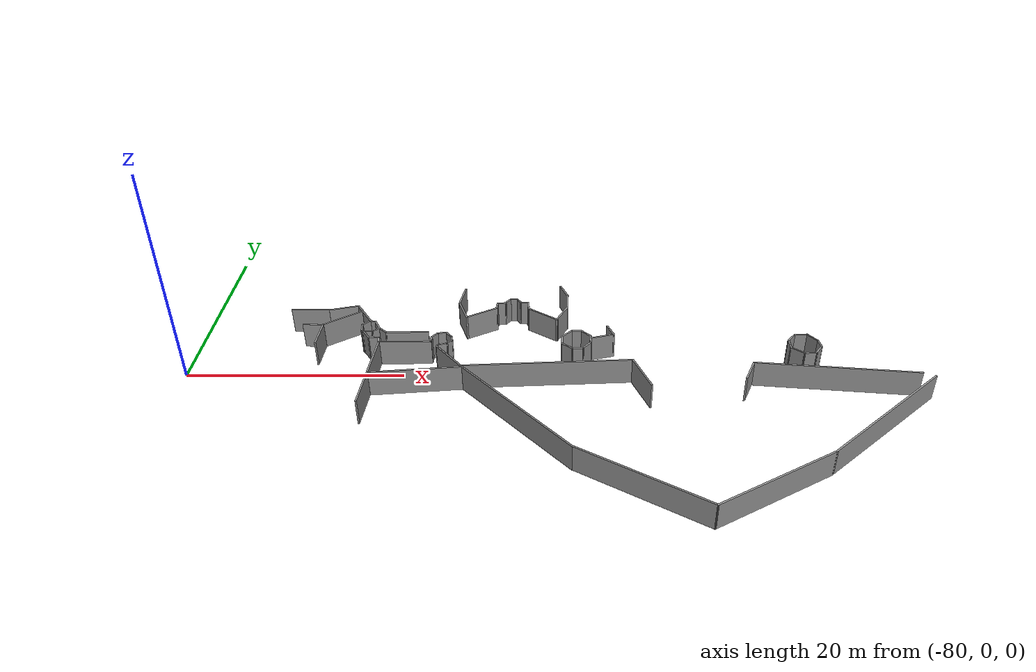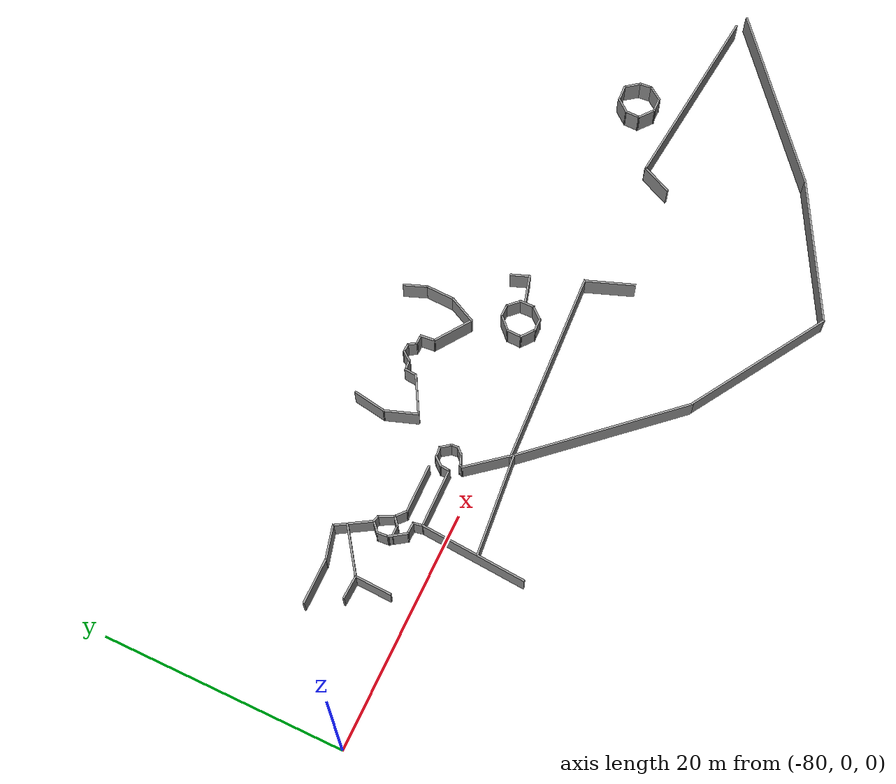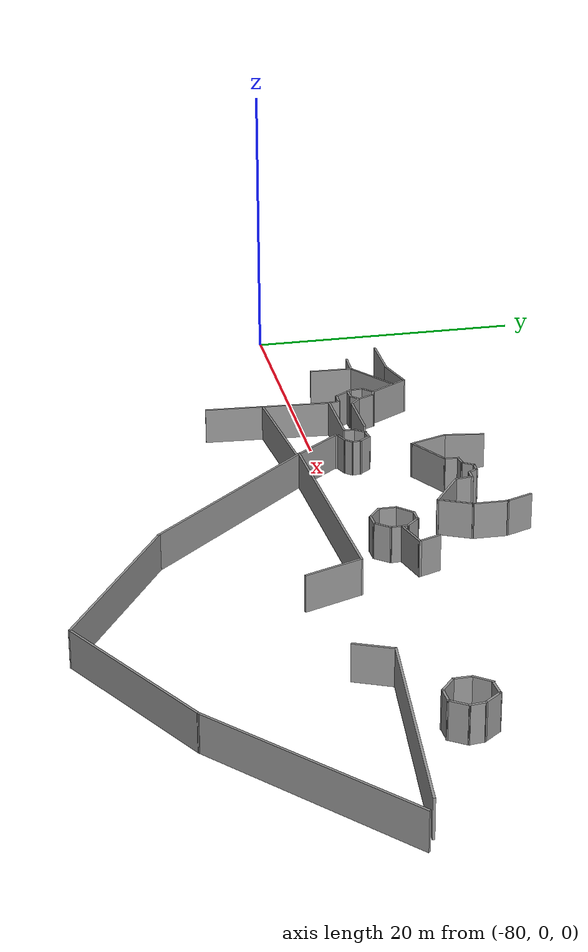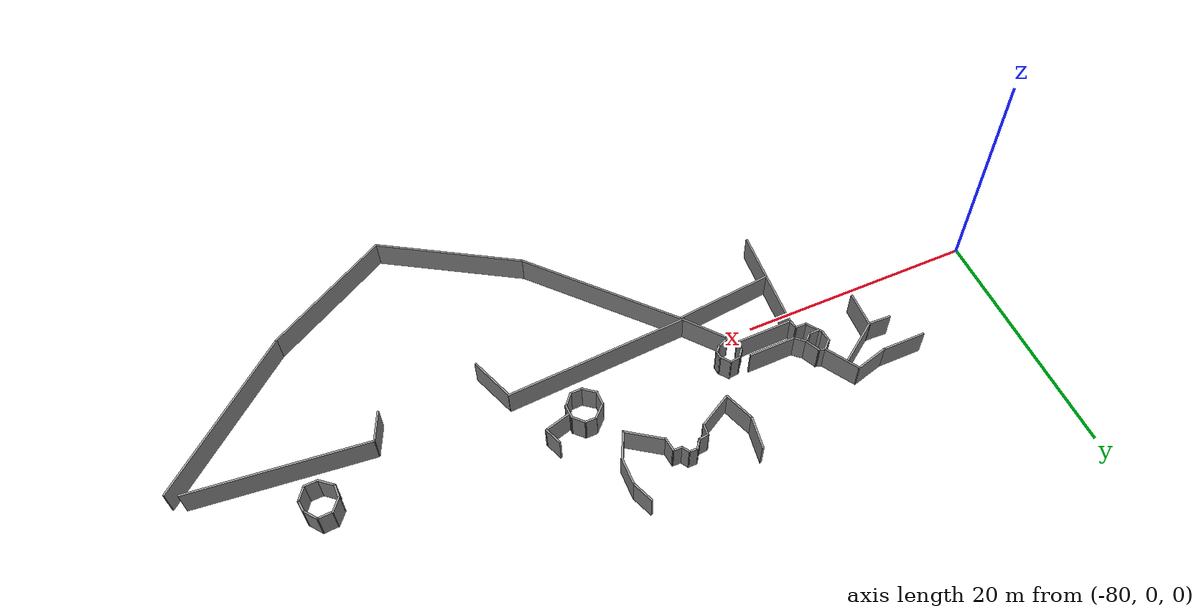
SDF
<sdf version="1.6">
 <model name="mall_new_reduce_size">
  <pose>-6.80917 7.5529 0 0 -0 0</pose>
  <link name="Wall_299">
   <collision name="Wall_299_Collision">
    <geometry><box><size>1.25244 0.15 2.5</size></box></geometry>
    <pose>0 0 1.25 0 -0 0</pose>
   </collision>
   <visual name="Wall_299_Visual">
    <pose>0 0 1.25 0 -0 0</pose>
    <geometry><box><size>1.25244 0.15 2.5</size></box></geometry>
    <material>
     <script><uri>file://media/materials/scripts/gazebo.material</uri><name>Gazebo/Grey</name></script>
     <ambient>1 1 1 1</ambient>
    </material>
    <meta><layer>0</layer></meta>
   </visual>
   <pose>-16.3634 -4.50577 0 0 -0 0.066556</pose>
  </link>
  <link name="Wall_300">
   <collision name="Wall_300_Collision">
    <geometry><box><size>1.44179 0.15 2.5</size></box></geometry>
    <pose>0 0 1.25 0 -0 0</pose>
   </collision>
   <visual name="Wall_300_Visual">
    <pose>0 0 1.25 0 -0 0</pose>
    <geometry><box><size>1.44179 0.15 2.5</size></box></geometry>
    <material>
     <script><uri>file://media/materials/scripts/gazebo.material</uri><name>Gazebo/Grey</name></script>
     <ambient>1 1 1 1</ambient>
    </material>
    <meta><layer>0</layer></meta>
   </visual>
   <pose>-15.4086 -4.98387 0 0 -0 -0.922283</pose>
  </link>
  <link name="Wall_301">
   <collision name="Wall_301_Collision">
    <geometry><box><size>1.09033 0.15 2.5</size></box></geometry>
    <pose>0 0 1.25 0 -0 0</pose>
   </collision>
   <visual name="Wall_301_Visual">
    <pose>0 0 1.25 0 -0 0</pose>
    <geometry><box><size>1.09033 0.15 2.5</size></box></geometry>
    <material>
     <script><uri>file://media/materials/scripts/gazebo.material</uri><name>Gazebo/Grey</name></script>
     <ambient>1 1 1 1</ambient>
    </material>
    <meta><layer>0</layer></meta>
   </visual>
   <pose>-14.9682 -5.95144 0 0 -0 -1.4636</pose>
  </link>
  <link name="Wall_302">
   <collision name="Wall_302_Collision">
    <geometry><box><size>1.37103 0.15 2.5</size></box></geometry>
    <pose>0 0 1.25 0 -0 0</pose>
   </collision>
   <visual name="Wall_302_Visual">
    <pose>0 0 1.25 0 -0 0</pose>
    <geometry><box><size>1.37103 0.15 2.5</size></box></geometry>
    <material>
     <script><uri>file://media/materials/scripts/gazebo.material</uri><name>Gazebo/Grey</name></script>
     <ambient>1 1 1 1</ambient>
    </material>
    <meta><layer>0</layer></meta>
   </visual>
   <pose>-15.2636 -6.93047 0 0 -0 -2.17283</pose>
  </link>
  <link name="Wall_303">
   <collision name="Wall_303_Collision">
    <geometry><box><size>1.23632 0.15 2.5</size></box></geometry>
    <pose>0 0 1.25 0 -0 0</pose>
   </collision>
   <visual name="Wall_303_Visual">
    <pose>0 0 1.25 0 -0 0</pose>
    <geometry><box><size>1.23632 0.15 2.5</size></box></geometry>
    <material>
     <script><uri>file://media/materials/scripts/gazebo.material</uri><name>Gazebo/Grey</name></script>
     <ambient>1 1 1 1</ambient>
    </material>
    <meta><layer>0</layer></meta>
   </visual>
   <pose>-16.1437 -7.44622 0 0 -0 -3.10299</pose>
  </link>
  <link name="Wall_304">
   <collision name="Wall_304_Collision">
    <geometry><box><size>1.52701 0.15 2.5</size></box></geometry>
    <pose>0 0 1.25 0 -0 0</pose>
   </collision>
   <visual name="Wall_304_Visual">
    <pose>0 0 1.25 0 -0 0</pose>
    <geometry><box><size>1.52701 0.15 2.5</size></box></geometry>
    <material>
     <script><uri>file://media/materials/scripts/gazebo.material</uri><name>Gazebo/Grey</name></script>
     <ambient>1 1 1 1</ambient>
    </material>
    <meta><layer>0</layer></meta>
   </visual>
   <pose>-17.2005 -7.03707 0 0 -0 2.45115</pose>
  </link>
  <link name="Wall_305">
   <collision name="Wall_305_Collision">
    <geometry><box><size>1.2495 0.15 2.5</size></box></geometry>
    <pose>0 0 1.25 0 -0 0</pose>
   </collision>
   <visual name="Wall_305_Visual">
    <pose>0 0 1.25 0 -0 0</pose>
    <geometry><box><size>1.2495 0.15 2.5</size></box></geometry>
    <material>
     <script><uri>file://media/materials/scripts/gazebo.material</uri><name>Gazebo/Grey</name></script>
     <ambient>1 1 1 1</ambient>
    </material>
    <meta><layer>0</layer></meta>
   </visual>
   <pose>-17.7276 -6.04885 0 0 -0 1.57925</pose>
  </link>
  <link name="Wall_306">
   <collision name="Wall_306_Collision">
    <geometry><box><size>1.3668 0.15 2.5</size></box></geometry>
    <pose>0 0 1.25 0 -0 0</pose>
   </collision>
   <visual name="Wall_306_Visual">
    <pose>0 0 1.25 0 -0 0</pose>
    <geometry><box><size>1.3668 0.15 2.5</size></box></geometry>
    <material>
     <script><uri>file://media/materials/scripts/gazebo.material</uri><name>Gazebo/Grey</name></script>
     <ambient>1 1 1 1</ambient>
    </material>
    <meta><layer>0</layer></meta>
   </visual>
   <pose>-17.3575 -5.01145 0 0 -0 0.907215</pose>
  </link>
  <link name="Wall_309">
   <collision name="Wall_309_Collision">
    <geometry><box><size>2.66375 0.15 2.5</size></box></geometry>
    <pose>0 0 1.25 0 -0 0</pose>
   </collision>
   <visual name="Wall_309_Visual">
    <pose>0 0 1.25 0 -0 0</pose>
    <geometry><box><size>2.66375 0.15 2.5</size></box></geometry>
    <material>
     <script><uri>file://media/materials/scripts/gazebo.material</uri><name>Gazebo/Grey</name></script>
     <ambient>1 1 1 1</ambient>
    </material>
    <meta><layer>0</layer></meta>
   </visual>
   <pose>-22.0492 -10.0757 0 0 -0 1.15356</pose>
  </link>
  <link name="Wall_310">
   <collision name="Wall_310_Collision">
    <geometry><box><size>14.7966 0.15 2.5</size></box></geometry>
    <pose>0 0 1.25 0 -0 0</pose>
   </collision>
   <visual name="Wall_310_Visual">
    <pose>0 0 1.25 0 -0 0</pose>
    <geometry><box><size>14.7966 0.15 2.5</size></box></geometry>
    <material>
     <script><uri>file://media/materials/scripts/gazebo.material</uri><name>Gazebo/Grey</name></script>
     <ambient>1 1 1 1</ambient>
    </material>
    <meta><layer>0</layer></meta>
   </visual>
   <pose>-14.2431 -9.68361 0 0 -0 -0.103547</pose>
  </link>
  <link name="Wall_312">
   <collision name="Wall_312_Collision">
    <geometry><box><size>15.0612 0.15 2.5</size></box></geometry>
    <pose>0 0 1.25 0 -0 0</pose>
   </collision>
   <visual name="Wall_312_Visual">
    <pose>0 0 1.25 0 -0 0</pose>
    <geometry><box><size>15.0612 0.15 2.5</size></box></geometry>
    <material>
     <script><uri>file://media/materials/scripts/gazebo.material</uri><name>Gazebo/Grey</name></script>
     <ambient>1 1 1 1</ambient>
    </material>
    <meta><layer>0</layer></meta>
   </visual>
   <pose>-11.548 -15.883 0 0 -0 -2.41791</pose>
  </link>
  <link name="Wall_313">
   <collision name="Wall_313_Collision">
    <geometry><box><size>11.9714 0.15 2.5</size></box></geometry>
    <pose>0 0 1.25 0 -0 0</pose>
   </collision>
   <visual name="Wall_313_Visual">
    <pose>0 0 1.25 0 -0 0</pose>
    <geometry><box><size>11.9714 0.15 2.5</size></box></geometry>
    <material>
     <script><uri>file://media/materials/scripts/gazebo.material</uri><name>Gazebo/Grey</name></script>
     <ambient>1 1 1 1</ambient>
    </material>
    <meta><layer>0</layer></meta>
   </visual>
   <pose>-22.2421 -23.7733 0 0 -0 -2.61833</pose>
  </link>
  <link name="Wall_314">
   <collision name="Wall_314_Collision">
    <geometry><box><size>12.6291 0.15 2.5</size></box></geometry>
    <pose>0 0 1.25 0 -0 0</pose>
   </collision>
   <visual name="Wall_314_Visual">
    <pose>0 0 1.25 0 -0 0</pose>
    <geometry><box><size>12.6291 0.15 2.5</size></box></geometry>
    <material>
     <script><uri>file://media/materials/scripts/gazebo.material</uri><name>Gazebo/Grey</name></script>
     <ambient>1 1 1 1</ambient>
    </material>
    <meta><layer>0</layer></meta>
   </visual>
   <pose>-32.6669 -23.463 0 0 -0 2.5911</pose>
  </link>
  <link name="Wall_315">
   <collision name="Wall_315_Collision">
    <geometry><box><size>14.7593 0.15 2.5</size></box></geometry>
    <pose>0 0 1.25 0 -0 0</pose>
   </collision>
   <visual name="Wall_315_Visual">
    <pose>0 0 1.25 0 -0 0</pose>
    <geometry><box><size>14.7593 0.15 2.5</size></box></geometry>
    <material>
     <script><uri>file://media/materials/scripts/gazebo.material</uri><name>Gazebo/Grey</name></script>
     <ambient>1 1 1 1</ambient>
    </material>
    <meta><layer>0</layer></meta>
   </visual>
   <pose>-42.8797 -14.8029 0 0 -0 2.30518</pose>
  </link>
  <link name="Wall_316">
   <collision name="Wall_316_Collision">
    <geometry><box><size>15.666 0.15 2.5</size></box></geometry>
    <pose>0 0 1.25 0 -0 0</pose>
   </collision>
   <visual name="Wall_316_Visual">
    <pose>0 0 1.25 0 -0 0</pose>
    <geometry><box><size>15.666 0.15 2.5</size></box></geometry>
    <material>
     <script><uri>file://media/materials/scripts/gazebo.material</uri><name>Gazebo/Grey</name></script>
     <ambient>1 1 1 1</ambient>
    </material>
    <meta><layer>0</layer></meta>
   </visual>
   <pose>-40.0804 -8.94499 0 0 -0 0.056231</pose>
  </link>
  <link name="Wall_317">
   <collision name="Wall_317_Collision">
    <geometry><box><size>4.0797 0.15 2.5</size></box></geometry>
    <pose>0 0 1.25 0 -0 0</pose>
   </collision>
   <visual name="Wall_317_Visual">
    <pose>0 0 1.25 0 -0 0</pose>
    <geometry><box><size>4.0797 0.15 2.5</size></box></geometry>
    <material>
     <script><uri>file://media/materials/scripts/gazebo.material</uri><name>Gazebo/Grey</name></script>
     <ambient>1 1 1 1</ambient>
    </material>
    <meta><layer>0</layer></meta>
   </visual>
   <pose>-31.6512 -10.3768 0 0 -0 -1.21551</pose>
  </link>
  <link name="Wall_340">
   <collision name="Wall_340_Collision">
    <geometry><box><size>1.61603 0.15 2.5</size></box></geometry>
    <pose>0 0 1.25 0 -0 0</pose>
   </collision>
   <visual name="Wall_340_Visual">
    <pose>0 0 1.25 0 -0 0</pose>
    <geometry><box><size>1.61603 0.15 2.5</size></box></geometry>
    <material>
     <script><uri>file://media/materials/scripts/gazebo.material</uri><name>Gazebo/Grey</name></script>
     <ambient>1 1 1 1</ambient>
    </material>
    <meta><layer>0</layer></meta>
   </visual>
   <pose>-34.1129 -3.77256 0 0 -0 -1.20963</pose>
  </link>
  <link name="Wall_341">
   <collision name="Wall_341_Collision">
    <geometry><box><size>2.32014 0.15 2.5</size></box></geometry>
    <pose>0 0 1.25 0 -0 0</pose>
   </collision>
   <visual name="Wall_341_Visual">
    <pose>0 0 1.25 0 -0 0</pose>
    <geometry><box><size>2.32014 0.15 2.5</size></box></geometry>
    <material>
     <script><uri>file://media/materials/scripts/gazebo.material</uri><name>Gazebo/Grey</name></script>
     <ambient>1 1 1 1</ambient>
    </material>
    <meta><layer>0</layer></meta>
   </visual>
   <pose>-34.8895 -4.75363 0 0 -0 -2.86593</pose>
  </link>
  <link name="Wall_344">
   <collision name="Wall_344_Collision">
    <geometry><box><size>1 0.15 2.5</size></box></geometry>
    <pose>0 0 1.25 0 -0 0</pose>
   </collision>
   <visual name="Wall_344_Visual">
    <pose>0 0 1.25 0 -0 0</pose>
    <geometry><box><size>1 0.15 2.5</size></box></geometry>
    <material>
     <script><uri>file://media/materials/scripts/gazebo.material</uri><name>Gazebo/Grey</name></script>
     <ambient>1 1 1 1</ambient>
    </material>
    <meta><layer>0</layer></meta>
   </visual>
   <pose>-37.269 -3.87943 0 0 -0 0</pose>
  </link>
  <link name="Wall_345">
   <collision name="Wall_345_Collision">
    <geometry><box><size>1.30987 0.15 2.5</size></box></geometry>
    <pose>0 0 1.25 0 -0 0</pose>
   </collision>
   <visual name="Wall_345_Visual">
    <pose>0 0 1.25 0 -0 0</pose>
    <geometry><box><size>1.30987 0.15 2.5</size></box></geometry>
    <material>
     <script><uri>file://media/materials/scripts/gazebo.material</uri><name>Gazebo/Grey</name></script>
     <ambient>1 1 1 1</ambient>
    </material>
    <meta><layer>0</layer></meta>
   </visual>
   <pose>-36.4425 -4.29785 0 0 -0 -0.805961</pose>
  </link>
  <link name="Wall_346">
   <collision name="Wall_346_Collision">
    <geometry><box><size>1.24209 0.15 2.5</size></box></geometry>
    <pose>0 0 1.25 0 -0 0</pose>
   </collision>
   <visual name="Wall_346_Visual">
    <pose>0 0 1.25 0 -0 0</pose>
    <geometry><box><size>1.24209 0.15 2.5</size></box></geometry>
    <material>
     <script><uri>file://media/materials/scripts/gazebo.material</uri><name>Gazebo/Grey</name></script>
     <ambient>1 1 1 1</ambient>
    </material>
    <meta><layer>0</layer></meta>
   </visual>
   <pose>-36.0325 -5.24519 0 0 -0 -1.53991</pose>
  </link>
  <link name="Wall_347">
   <collision name="Wall_347_Collision">
    <geometry><box><size>1.31923 0.15 2.5</size></box></geometry>
    <pose>0 0 1.25 0 -0 0</pose>
   </collision>
   <visual name="Wall_347_Visual">
    <pose>0 0 1.25 0 -0 0</pose>
    <geometry><box><size>1.31923 0.15 2.5</size></box></geometry>
    <material>
     <script><uri>file://media/materials/scripts/gazebo.material</uri><name>Gazebo/Grey</name></script>
     <ambient>1 1 1 1</ambient>
    </material>
    <meta><layer>0</layer></meta>
   </visual>
   <pose>-36.396 -6.24199 0 0 -0 -2.26043</pose>
  </link>
  <link name="Wall_348">
   <collision name="Wall_348_Collision">
    <geometry><box><size>1.10725 0.15 2.5</size></box></geometry>
    <pose>0 0 1.25 0 -0 0</pose>
   </collision>
   <visual name="Wall_348_Visual">
    <pose>0 0 1.25 0 -0 0</pose>
    <geometry><box><size>1.10725 0.15 2.5</size></box></geometry>
    <material>
     <script><uri>file://media/materials/scripts/gazebo.material</uri><name>Gazebo/Grey</name></script>
     <ambient>1 1 1 1</ambient>
    </material>
    <meta><layer>0</layer></meta>
   </visual>
   <pose>-37.2547 -6.70987 0 0 -0 -3.10635</pose>
  </link>
  <link name="Wall_349">
   <collision name="Wall_349_Collision">
    <geometry><box><size>1.3639 0.15 2.5</size></box></geometry>
    <pose>0 0 1.25 0 -0 0</pose>
   </collision>
   <visual name="Wall_349_Visual">
    <pose>0 0 1.25 0 -0 0</pose>
    <geometry><box><size>1.3639 0.15 2.5</size></box></geometry>
    <material>
     <script><uri>file://media/materials/scripts/gazebo.material</uri><name>Gazebo/Grey</name></script>
     <ambient>1 1 1 1</ambient>
    </material>
    <meta><layer>0</layer></meta>
   </visual>
   <pose>-38.2094 -6.34212 0 0 -0 2.47312</pose>
  </link>
  <link name="Wall_350">
   <collision name="Wall_350_Collision">
    <geometry><box><size>1.28376 0.15 2.5</size></box></geometry>
    <pose>0 0 1.25 0 -0 0</pose>
   </collision>
   <visual name="Wall_350_Visual">
    <pose>0 0 1.25 0 -0 0</pose>
    <geometry><box><size>1.28376 0.15 2.5</size></box></geometry>
    <material>
     <script><uri>file://media/materials/scripts/gazebo.material</uri><name>Gazebo/Grey</name></script>
     <ambient>1 1 1 1</ambient>
    </material>
    <meta><layer>0</layer></meta>
   </visual>
   <pose>-38.673 -5.39908 0 0 -0 1.56336</pose>
  </link>
  <link name="Wall_351">
   <collision name="Wall_351_Collision">
    <geometry><box><size>1.42952 0.15 2.5</size></box></geometry>
    <pose>0 0 1.25 0 -0 0</pose>
   </collision>
   <visual name="Wall_351_Visual">
    <pose>0 0 1.25 0 -0 0</pose>
    <geometry><box><size>1.42952 0.15 2.5</size></box></geometry>
    <material>
     <script><uri>file://media/materials/scripts/gazebo.material</uri><name>Gazebo/Grey</name></script>
     <ambient>1 1 1 1</ambient>
    </material>
    <meta><layer>0</layer></meta>
   </visual>
   <pose>-38.2264 -4.36991 0 0 -0 0.78871</pose>
  </link>
  <link name="Wall_358">
   <collision name="Wall_358_Collision">
    <geometry><box><size>3.19362 0.15 2.5</size></box></geometry>
    <pose>0 0 1.25 0 -0 0</pose>
   </collision>
   <visual name="Wall_358_Visual">
    <pose>0 0 1.25 0 -0 0</pose>
    <geometry><box><size>3.19362 0.15 2.5</size></box></geometry>
    <material>
     <script><uri>file://media/materials/scripts/gazebo.material</uri><name>Gazebo/Grey</name></script>
     <ambient>1 1 1 1</ambient>
    </material>
    <meta><layer>0</layer></meta>
   </visual>
   <pose>-46.3456 -0.707961 0 0 -0 0.516499</pose>
  </link>
  <link name="Wall_359">
   <collision name="Wall_359_Collision">
    <geometry><box><size>1.04111 0.15 2.5</size></box></geometry>
    <pose>0 0 1.25 0 -0 0</pose>
   </collision>
   <visual name="Wall_359_Visual">
    <pose>0 0 1.25 0 -0 0</pose>
    <geometry><box><size>1.04111 0.15 2.5</size></box></geometry>
    <material>
     <script><uri>file://media/materials/scripts/gazebo.material</uri><name>Gazebo/Grey</name></script>
     <ambient>1 1 1 1</ambient>
    </material>
    <meta><layer>0</layer></meta>
   </visual>
   <pose>-44.9848 0.498691 0 0 -0 1.4865</pose>
  </link>
  <link name="Wall_360">
   <collision name="Wall_360_Collision">
    <geometry><box><size>0.919989 0.15 2.5</size></box></geometry>
    <pose>0 0 1.25 0 -0 0</pose>
   </collision>
   <visual name="Wall_360_Visual">
    <pose>0 0 1.25 0 -0 0</pose>
    <geometry><box><size>0.919989 0.15 2.5</size></box></geometry>
    <material>
     <script><uri>file://media/materials/scripts/gazebo.material</uri><name>Gazebo/Grey</name></script>
     <ambient>1 1 1 1</ambient>
    </material>
    <meta><layer>0</layer></meta>
   </visual>
   <pose>-44.5529 0.979904 0 0 -0 0.096885</pose>
  </link>
  <link name="Wall_361">
   <collision name="Wall_361_Collision">
    <geometry><box><size>0.974663 0.15 2.5</size></box></geometry>
    <pose>0 0 1.25 0 -0 0</pose>
   </collision>
   <visual name="Wall_361_Visual">
    <pose>0 0 1.25 0 -0 0</pose>
    <geometry><box><size>0.974663 0.15 2.5</size></box></geometry>
    <material>
     <script><uri>file://media/materials/scripts/gazebo.material</uri><name>Gazebo/Grey</name></script>
     <ambient>1 1 1 1</ambient>
    </material>
    <meta><layer>0</layer></meta>
   </visual>
   <pose>-43.9353 1.35039 0 0 -0 0.941096</pose>
  </link>
  <link name="Wall_362">
   <collision name="Wall_362_Collision">
    <geometry><box><size>0.806122 0.15 2.5</size></box></geometry>
    <pose>0 0 1.25 0 -0 0</pose>
   </collision>
   <visual name="Wall_362_Visual">
    <pose>0 0 1.25 0 -0 0</pose>
    <geometry><box><size>0.806122 0.15 2.5</size></box></geometry>
    <material>
     <script><uri>file://media/materials/scripts/gazebo.material</uri><name>Gazebo/Grey</name></script>
     <ambient>1 1 1 1</ambient>
    </material>
    <meta><layer>0</layer></meta>
   </visual>
   <pose>-43.3645 1.68786 0 0 -0 -0.012851</pose>
  </link>
  <link name="Wall_363">
   <collision name="Wall_363_Collision">
    <geometry><box><size>0.82835 0.15 2.5</size></box></geometry>
    <pose>0 0 1.25 0 -0 0</pose>
   </collision>
   <visual name="Wall_363_Visual">
    <pose>0 0 1.25 0 -0 0</pose>
    <geometry><box><size>0.82835 0.15 2.5</size></box></geometry>
    <material>
     <script><uri>file://media/materials/scripts/gazebo.material</uri><name>Gazebo/Grey</name></script>
     <ambient>1 1 1 1</ambient>
    </material>
    <meta><layer>0</layer></meta>
   </visual>
   <pose>-42.8527 1.39011 0 0 -0 -0.998351</pose>
  </link>
  <link name="Wall_364">
   <collision name="Wall_364_Collision">
    <geometry><box><size>0.847899 0.15 2.5</size></box></geometry>
    <pose>0 0 1.25 0 -0 0</pose>
   </collision>
   <visual name="Wall_364_Visual">
    <pose>0 0 1.25 0 -0 0</pose>
    <geometry><box><size>0.847899 0.15 2.5</size></box></geometry>
    <material>
     <script><uri>file://media/materials/scripts/gazebo.material</uri><name>Gazebo/Grey</name></script>
     <ambient>1 1 1 1</ambient>
    </material>
    <meta><layer>0</layer></meta>
   </visual>
   <pose>-42.3118 1.09481 0 0 -0 -0.029209</pose>
  </link>
  <link name="Wall_365">
   <collision name="Wall_365_Collision">
    <geometry><box><size>1.27005 0.15 2.5</size></box></geometry>
    <pose>0 0 1.25 0 -0 0</pose>
   </collision>
   <visual name="Wall_365_Visual">
    <pose>0 0 1.25 0 -0 0</pose>
    <geometry><box><size>1.27005 0.15 2.5</size></box></geometry>
    <material>
     <script><uri>file://media/materials/scripts/gazebo.material</uri><name>Gazebo/Grey</name></script>
     <ambient>1 1 1 1</ambient>
    </material>
    <meta><layer>0</layer></meta>
   </visual>
   <pose>-41.9091 0.528067 0 0 -0 -1.45941</pose>
  </link>
  <link name="Wall_366">
   <collision name="Wall_366_Collision">
    <geometry><box><size>3.45516 0.15 2.5</size></box></geometry>
    <pose>0 0 1.25 0 -0 0</pose>
   </collision>
   <visual name="Wall_366_Visual">
    <pose>0 0 1.25 0 -0 0</pose>
    <geometry><box><size>3.45516 0.15 2.5</size></box></geometry>
    <material>
     <script><uri>file://media/materials/scripts/gazebo.material</uri><name>Gazebo/Grey</name></script>
     <ambient>1 1 1 1</ambient>
    </material>
    <meta><layer>0</layer></meta>
   </visual>
   <pose>-40.4877 -0.988988 0 0 -0 -0.613962</pose>
  </link>
  <link name="Wall_367">
   <collision name="Wall_367_Collision">
    <geometry><box><size>2.46444 0.15 2.5</size></box></geometry>
    <pose>0 0 1.25 0 -0 0</pose>
   </collision>
   <visual name="Wall_367_Visual">
    <pose>0 0 1.25 0 -0 0</pose>
    <geometry><box><size>2.46444 0.15 2.5</size></box></geometry>
    <material>
     <script><uri>file://media/materials/scripts/gazebo.material</uri><name>Gazebo/Grey</name></script>
     <ambient>1 1 1 1</ambient>
    </material>
    <meta><layer>0</layer></meta>
   </visual>
   <pose>-38.6407 -0.899676 0 0 -0 1.11954</pose>
  </link>
  <link name="Wall_368">
   <collision name="Wall_368_Collision">
    <geometry><box><size>2.43294 0.15 2.5</size></box></geometry>
    <pose>0 0 1.25 0 -0 0</pose>
   </collision>
   <visual name="Wall_368_Visual">
    <pose>0 0 1.25 0 -0 0</pose>
    <geometry><box><size>2.43294 0.15 2.5</size></box></geometry>
    <material>
     <script><uri>file://media/materials/scripts/gazebo.material</uri><name>Gazebo/Grey</name></script>
     <ambient>1 1 1 1</ambient>
    </material>
    <meta><layer>0</layer></meta>
   </visual>
   <pose>-38.1023 1.28298 0 0 -0 1.54864</pose>
  </link>
  <link name="Wall_369">
   <collision name="Wall_369_Collision">
    <geometry><box><size>1.98148 0.15 2.5</size></box></geometry>
    <pose>0 0 1.25 0 -0 0</pose>
   </collision>
   <visual name="Wall_369_Visual">
    <pose>0 0 1.25 0 -0 0</pose>
    <geometry><box><size>1.98148 0.15 2.5</size></box></geometry>
    <material>
     <script><uri>file://media/materials/scripts/gazebo.material</uri><name>Gazebo/Grey</name></script>
     <ambient>1 1 1 1</ambient>
    </material>
    <meta><layer>0</layer></meta>
   </visual>
   <pose>-38.4143 3.2789 0 0 -0 1.93811</pose>
  </link>
  <link name="Wall_376">
   <collision name="Wall_376_Collision">
    <geometry><box><size>2.77757 0.15 2.5</size></box></geometry>
    <pose>0 0 1.25 0 -0 0</pose>
   </collision>
   <visual name="Wall_376_Visual">
    <pose>0 0 1.25 0 -0 0</pose>
    <geometry><box><size>2.77757 0.15 2.5</size></box></geometry>
    <material>
     <script><uri>file://media/materials/scripts/gazebo.material</uri><name>Gazebo/Grey</name></script>
     <ambient>1 1 1 1</ambient>
    </material>
    <meta><layer>0</layer></meta>
   </visual>
   <pose>-48.4747 2.30335 0 0 -0 -1.72552</pose>
  </link>
  <link name="Wall_377">
   <collision name="Wall_377_Collision">
    <geometry><box><size>2.81467 0.15 2.5</size></box></geometry>
    <pose>0 0 1.25 0 -0 0</pose>
   </collision>
   <visual name="Wall_377_Visual">
    <pose>0 0 1.25 0 -0 0</pose>
    <geometry><box><size>2.81467 0.15 2.5</size></box></geometry>
    <material>
     <script><uri>file://media/materials/scripts/gazebo.material</uri><name>Gazebo/Grey</name></script>
     <ambient>1 1 1 1</ambient>
    </material>
    <meta><layer>0</layer></meta>
   </visual>
   <pose>-48.2323 -0.265382 0 0 -0 -1.23042</pose>
  </link>
  <link name="Wall_401">
   <collision name="Wall_401_Collision">
    <geometry><box><size>8.88079 0.15 2.5</size></box></geometry>
    <pose>0 0 1.25 0 -0 0</pose>
   </collision>
   <visual name="Wall_401_Visual">
    <pose>0 0 1.25 0 -0 0</pose>
    <geometry><box><size>8.88079 0.15 2.5</size></box></geometry>
    <material>
     <script><uri>file://media/materials/scripts/gazebo.material</uri><name>Gazebo/Grey</name></script>
     <ambient>1 1 1 1</ambient>
    </material>
    <meta><layer>0</layer></meta>
   </visual>
   <pose>-55.8835 -10.0474 0 0 -0 1.50433</pose>
  </link>
  <link name="Wall_402">
   <collision name="Wall_402_Collision">
    <geometry><box><size>0.897348 0.15 2.5</size></box></geometry>
    <pose>0 0 1.25 0 -0 0</pose>
   </collision>
   <visual name="Wall_402_Visual">
    <pose>0 0 1.25 0 -0 0</pose>
    <geometry><box><size>0.897348 0.15 2.5</size></box></geometry>
    <material>
     <script><uri>file://media/materials/scripts/gazebo.material</uri><name>Gazebo/Grey</name></script>
     <ambient>1 1 1 1</ambient>
    </material>
    <meta><layer>0</layer></meta>
   </visual>
   <pose>-55.6756 -5.31366 0 0 -0 1.76181</pose>
  </link>
  <link name="Wall_403">
   <collision name="Wall_403_Collision">
    <geometry><box><size>1.05205 0.15 2.5</size></box></geometry>
    <pose>0 0 1.25 0 -0 0</pose>
   </collision>
   <visual name="Wall_403_Visual">
    <pose>0 0 1.25 0 -0 0</pose>
    <geometry><box><size>1.05205 0.15 2.5</size></box></geometry>
    <material>
     <script><uri>file://media/materials/scripts/gazebo.material</uri><name>Gazebo/Grey</name></script>
     <ambient>1 1 1 1</ambient>
    </material>
    <meta><layer>0</layer></meta>
   </visual>
   <pose>-56.1975 -4.94175 0 0 -0 3.09776</pose>
  </link>
  <link name="Wall_404">
   <collision name="Wall_404_Collision">
    <geometry><box><size>1.6486 0.15 2.5</size></box></geometry>
    <pose>0 0 1.25 0 -0 0</pose>
   </collision>
   <visual name="Wall_404_Visual">
    <pose>0 0 1.25 0 -0 0</pose>
    <geometry><box><size>1.6486 0.15 2.5</size></box></geometry>
    <material>
     <script><uri>file://media/materials/scripts/gazebo.material</uri><name>Gazebo/Grey</name></script>
     <ambient>1 1 1 1</ambient>
    </material>
    <meta><layer>0</layer></meta>
   </visual>
   <pose>-57.0705 -4.31764 0 0 -0 2.16924</pose>
  </link>
  <link name="Wall_405">
   <collision name="Wall_405_Collision">
    <geometry><box><size>1.04728 0.15 2.5</size></box></geometry>
    <pose>0 0 1.25 0 -0 0</pose>
   </collision>
   <visual name="Wall_405_Visual">
    <pose>0 0 1.25 0 -0 0</pose>
    <geometry><box><size>1.04728 0.15 2.5</size></box></geometry>
    <material>
     <script><uri>file://media/materials/scripts/gazebo.material</uri><name>Gazebo/Grey</name></script>
     <ambient>1 1 1 1</ambient>
    </material>
    <meta><layer>0</layer></meta>
   </visual>
   <pose>-57.5295 -3.26618 0 0 -0 1.65307</pose>
  </link>
  <link name="Wall_406">
   <collision name="Wall_406_Collision">
    <geometry><box><size>1.06244 0.15 2.5</size></box></geometry>
    <pose>0 0 1.25 0 -0 0</pose>
   </collision>
   <visual name="Wall_406_Visual">
    <pose>0 0 1.25 0 -0 0</pose>
    <geometry><box><size>1.06244 0.15 2.5</size></box></geometry>
    <material>
     <script><uri>file://media/materials/scripts/gazebo.material</uri><name>Gazebo/Grey</name></script>
     <ambient>1 1 1 1</ambient>
    </material>
    <meta><layer>0</layer></meta>
   </visual>
   <pose>-57.2204 -2.50531 0 0 -0 0.758329</pose>
  </link>
  <link name="Wall_407">
   <collision name="Wall_407_Collision">
    <geometry><box><size>0.639841 0.15 2.5</size></box></geometry>
    <pose>0 0 1.25 0 -0 0</pose>
   </collision>
   <visual name="Wall_407_Visual">
    <pose>0 0 1.25 0 -0 0</pose>
    <geometry><box><size>0.639841 0.15 2.5</size></box></geometry>
    <material>
     <script><uri>file://media/materials/scripts/gazebo.material</uri><name>Gazebo/Grey</name></script>
     <ambient>1 1 1 1</ambient>
    </material>
    <meta><layer>0</layer></meta>
   </visual>
   <pose>-56.6521 -2.25288 0 0 -0 -0.253027</pose>
  </link>
  <link name="Wall_408">
   <collision name="Wall_408_Collision">
    <geometry><box><size>1.42721 0.15 2.5</size></box></geometry>
    <pose>0 0 1.25 0 -0 0</pose>
   </collision>
   <visual name="Wall_408_Visual">
    <pose>0 0 1.25 0 -0 0</pose>
    <geometry><box><size>1.42721 0.15 2.5</size></box></geometry>
    <material>
     <script><uri>file://media/materials/scripts/gazebo.material</uri><name>Gazebo/Grey</name></script>
     <ambient>1 1 1 1</ambient>
    </material>
    <meta><layer>0</layer></meta>
   </visual>
   <pose>-56.1375 -2.87459 0 0 -0 -1.12122</pose>
  </link>
  <link name="Wall_409">
   <collision name="Wall_409_Collision">
    <geometry><box><size>1.12501 0.15 2.5</size></box></geometry>
    <pose>0 0 1.25 0 -0 0</pose>
   </collision>
   <visual name="Wall_409_Visual">
    <pose>0 0 1.25 0 -0 0</pose>
    <geometry><box><size>1.12501 0.15 2.5</size></box></geometry>
    <material>
     <script><uri>file://media/materials/scripts/gazebo.material</uri><name>Gazebo/Grey</name></script>
     <ambient>1 1 1 1</ambient>
    </material>
    <meta><layer>0</layer></meta>
   </visual>
   <pose>-55.4949 -3.78767 0 0 -0 -0.724728</pose>
  </link>
  <link name="Wall_411">
   <collision name="Wall_411_Collision">
    <geometry><box><size>4.04883 0.15 2.5</size></box></geometry>
    <pose>0 0 1.25 0 -0 0</pose>
   </collision>
   <visual name="Wall_411_Visual">
    <pose>0 0 1.25 0 -0 0</pose>
    <geometry><box><size>4.04883 0.15 2.5</size></box></geometry>
    <material>
     <script><uri>file://media/materials/scripts/gazebo.material</uri><name>Gazebo/Grey</name></script>
     <ambient>1 1 1 1</ambient>
    </material>
    <meta><layer>0</layer></meta>
   </visual>
   <pose>-53.1806 -4.10085 0 0 -0 0.010101</pose>
  </link>
  <link name="Wall_417">
   <collision name="Wall_417_Collision">
    <geometry><box><size>0.945041 0.15 2.5</size></box></geometry>
    <pose>0 0 1.25 0 -0 0</pose>
   </collision>
   <visual name="Wall_417_Visual">
    <pose>0 0 1.25 0 -0 0</pose>
    <geometry><box><size>0.945041 0.15 2.5</size></box></geometry>
    <material>
     <script><uri>file://media/materials/scripts/gazebo.material</uri><name>Gazebo/Grey</name></script>
     <ambient>1 1 1 1</ambient>
    </material>
    <meta><layer>0</layer></meta>
   </visual>
   <pose>-56.1664 -3.71764 0 0 -0 -2.4512</pose>
  </link>
  <link name="Wall_418">
   <collision name="Wall_418_Collision">
    <geometry><box><size>0.981722 0.15 2.5</size></box></geometry>
    <pose>0 0 1.25 0 -0 0</pose>
   </collision>
   <visual name="Wall_418_Visual">
    <pose>0 0 1.25 0 -0 0</pose>
    <geometry><box><size>0.981722 0.15 2.5</size></box></geometry>
    <material>
     <script><uri>file://media/materials/scripts/gazebo.material</uri><name>Gazebo/Grey</name></script>
     <ambient>1 1 1 1</ambient>
    </material>
    <meta><layer>0</layer></meta>
   </visual>
   <pose>-56.8887 -3.96587 0 0 -0 -3.13011</pose>
  </link>
  <link name="Wall_422">
   <collision name="Wall_422_Collision">
    <geometry><box><size>3.74241 0.15 2.5</size></box></geometry>
    <pose>0 0 1.25 0 -0 0</pose>
   </collision>
   <visual name="Wall_422_Visual">
    <pose>0 0 1.25 0 -0 0</pose>
    <geometry><box><size>3.74241 0.15 2.5</size></box></geometry>
    <material>
     <script><uri>file://media/materials/scripts/gazebo.material</uri><name>Gazebo/Grey</name></script>
     <ambient>1 1 1 1</ambient>
    </material>
    <meta><layer>0</layer></meta>
   </visual>
   <pose>-62.9887 -0.242289 0 0 -0 0</pose>
  </link>
  <link name="Wall_423">
   <collision name="Wall_423_Collision">
    <geometry><box><size>2.9099 0.15 2.5</size></box></geometry>
    <pose>0 0 1.25 0 -0 0</pose>
   </collision>
   <visual name="Wall_423_Visual">
    <pose>0 0 1.25 0 -0 0</pose>
    <geometry><box><size>2.9099 0.15 2.5</size></box></geometry>
    <material>
     <script><uri>file://media/materials/scripts/gazebo.material</uri><name>Gazebo/Grey</name></script>
     <ambient>1 1 1 1</ambient>
    </material>
    <meta><layer>0</layer></meta>
   </visual>
   <pose>-59.8301 0.103872 0 0 -0 0.260825</pose>
  </link>
  <link name="Wall_424">
   <collision name="Wall_424_Collision">
    <geometry><box><size>3.24233 0.15 2.5</size></box></geometry>
    <pose>0 0 1.25 0 -0 0</pose>
   </collision>
   <visual name="Wall_424_Visual">
    <pose>0 0 1.25 0 -0 0</pose>
    <geometry><box><size>3.24233 0.15 2.5</size></box></geometry>
    <material>
     <script><uri>file://media/materials/scripts/gazebo.material</uri><name>Gazebo/Grey</name></script>
     <ambient>1 1 1 1</ambient>
    </material>
    <meta><layer>0</layer></meta>
   </visual>
   <pose>-57.693 -0.870766 0 0 -0 -1.02409</pose>
  </link>
  <link name="Wall_427">
   <collision name="Wall_427_Collision">
    <geometry><box><size>3.12833 0.15 2.5</size></box></geometry>
    <pose>0 0 1.25 0 -0 0</pose>
   </collision>
   <visual name="Wall_427_Visual">
    <pose>0 0 1.25 0 -0 0</pose>
    <geometry><box><size>3.12833 0.15 2.5</size></box></geometry>
    <material>
     <script><uri>file://media/materials/scripts/gazebo.material</uri><name>Gazebo/Grey</name></script>
     <ambient>1 1 1 1</ambient>
    </material>
    <meta><layer>0</layer></meta>
   </visual>
   <pose>-61.3717 -4.31042 0 0 -0 1.53172</pose>
  </link>
  <link name="Wall_428">
   <collision name="Wall_428_Collision">
    <geometry><box><size>4.18793 0.15 2.5</size></box></geometry>
    <pose>0 0 1.25 0 -0 0</pose>
   </collision>
   <visual name="Wall_428_Visual">
    <pose>0 0 1.25 0 -0 0</pose>
    <geometry><box><size>4.18793 0.15 2.5</size></box></geometry>
    <material>
     <script><uri>file://media/materials/scripts/gazebo.material</uri><name>Gazebo/Grey</name></script>
     <ambient>1 1 1 1</ambient>
    </material>
    <meta><layer>0</layer></meta>
   </visual>
   <pose>-59.6593 -1.6746 0 0 -0 0.610537</pose>
  </link>
  <link name="Wall_431">
   <collision name="Wall_431_Collision">
    <geometry><box><size>1.99069 0.15 2.5</size></box></geometry>
    <pose>0 0 1.25 0 -0 0</pose>
   </collision>
   <visual name="Wall_431_Visual">
    <pose>0 0 1.25 0 -0 0</pose>
    <geometry><box><size>1.99069 0.15 2.5</size></box></geometry>
    <material>
     <script><uri>file://media/materials/scripts/gazebo.material</uri><name>Gazebo/Grey</name></script>
     <ambient>1 1 1 1</ambient>
    </material>
    <meta><layer>0</layer></meta>
   </visual>
   <pose>-62.246 -2.82159 0 0 -0 -0.042156</pose>
  </link>
  <link name="Wall_434">
   <collision name="Wall_434_Collision">
    <geometry><box><size>8.39063 0.15 2.5</size></box></geometry>
    <pose>0 0 1.25 0 -0 0</pose>
   </collision>
   <visual name="Wall_434_Visual">
    <pose>0 0 1.25 0 -0 0</pose>
    <geometry><box><size>8.39063 0.15 2.5</size></box></geometry>
    <material>
     <script><uri>file://media/materials/scripts/gazebo.material</uri><name>Gazebo/Grey</name></script>
     <ambient>1 1 1 1</ambient>
    </material>
    <meta><layer>0</layer></meta>
   </visual>
   <pose>-51.7356 -9.99206 0 0 -0 0.100443</pose>
  </link>
  <link name="Wall_437">
   <collision name="Wall_437_Collision">
    <geometry><box><size>4.93367 0.15 2.5</size></box></geometry>
    <pose>0 0 1.25 0 -0 0</pose>
   </collision>
   <visual name="Wall_437_Visual">
    <pose>0 0 1.25 0 -0 0</pose>
    <geometry><box><size>4.93367 0.15 2.5</size></box></geometry>
    <material>
     <script><uri>file://media/materials/scripts/gazebo.material</uri><name>Gazebo/Grey</name></script>
     <ambient>1 1 1 1</ambient>
    </material>
    <meta><layer>0</layer></meta>
   </visual>
   <pose>-53.2131 -5.64679 0 0 -0 0.01411</pose>
  </link>
  <link name="Wall_438">
   <collision name="Wall_438_Collision">
    <geometry><box><size>0.856294 0.15 2.5</size></box></geometry>
    <pose>0 0 1.25 0 -0 0</pose>
   </collision>
   <visual name="Wall_438_Visual">
    <pose>0 0 1.25 0 -0 0</pose>
    <geometry><box><size>0.856294 0.15 2.5</size></box></geometry>
    <material>
     <script><uri>file://media/materials/scripts/gazebo.material</uri><name>Gazebo/Grey</name></script>
     <ambient>1 1 1 1</ambient>
    </material>
    <meta><layer>0</layer></meta>
   </visual>
   <pose>-50.8031 -5.24109 0 0 -0 1.51867</pose>
  </link>
  <link name="Wall_439">
   <collision name="Wall_439_Collision">
    <geometry><box><size>0.969231 0.15 2.5</size></box></geometry>
    <pose>0 0 1.25 0 -0 0</pose>
   </collision>
   <visual name="Wall_439_Visual">
    <pose>0 0 1.25 0 -0 0</pose>
    <geometry><box><size>0.969231 0.15 2.5</size></box></geometry>
    <material>
     <script><uri>file://media/materials/scripts/gazebo.material</uri><name>Gazebo/Grey</name></script>
     <ambient>1 1 1 1</ambient>
    </material>
    <meta><layer>0</layer></meta>
   </visual>
   <pose>-50.5308 -4.57665 0 0 -0 0.902175</pose>
  </link>
  <link name="Wall_440">
   <collision name="Wall_440_Collision">
    <geometry><box><size>0.946307 0.15 2.5</size></box></geometry>
    <pose>0 0 1.25 0 -0 0</pose>
   </collision>
   <visual name="Wall_440_Visual">
    <pose>0 0 1.25 0 -0 0</pose>
    <geometry><box><size>0.946307 0.15 2.5</size></box></geometry>
    <material>
     <script><uri>file://media/materials/scripts/gazebo.material</uri><name>Gazebo/Grey</name></script>
     <ambient>1 1 1 1</ambient>
    </material>
    <meta><layer>0</layer></meta>
   </visual>
   <pose>-49.8906 -4.222 0 0 -0 0.1079</pose>
  </link>
  <link name="Wall_441">
   <collision name="Wall_441_Collision">
    <geometry><box><size>1.05702 0.15 2.5</size></box></geometry>
    <pose>0 0 1.25 0 -0 0</pose>
   </collision>
   <visual name="Wall_441_Visual">
    <pose>0 0 1.25 0 -0 0</pose>
    <geometry><box><size>1.05702 0.15 2.5</size></box></geometry>
    <material>
     <script><uri>file://media/materials/scripts/gazebo.material</uri><name>Gazebo/Grey</name></script>
     <ambient>1 1 1 1</ambient>
    </material>
    <meta><layer>0</layer></meta>
   </visual>
   <pose>-49.2136 -4.53268 0 0 -0 -0.928706</pose>
  </link>
  <link name="Wall_442">
   <collision name="Wall_442_Collision">
    <geometry><box><size>0.712069 0.15 2.5</size></box></geometry>
    <pose>0 0 1.25 0 -0 0</pose>
   </collision>
   <visual name="Wall_442_Visual">
    <pose>0 0 1.25 0 -0 0</pose>
    <geometry><box><size>0.712069 0.15 2.5</size></box></geometry>
    <material>
     <script><uri>file://media/materials/scripts/gazebo.material</uri><name>Gazebo/Grey</name></script>
     <ambient>1 1 1 1</ambient>
    </material>
    <meta><layer>0</layer></meta>
   </visual>
   <pose>-48.9034 -5.1666 0 0 -0 -1.50212</pose>
  </link>
  <link name="Wall_443">
   <collision name="Wall_443_Collision">
    <geometry><box><size>0.745598 0.15 2.5</size></box></geometry>
    <pose>0 0 1.25 0 -0 0</pose>
   </collision>
   <visual name="Wall_443_Visual">
    <pose>0 0 1.25 0 -0 0</pose>
    <geometry><box><size>0.745598 0.15 2.5</size></box></geometry>
    <material>
     <script><uri>file://media/materials/scripts/gazebo.material</uri><name>Gazebo/Grey</name></script>
     <ambient>1 1 1 1</ambient>
    </material>
    <meta><layer>0</layer></meta>
   </visual>
   <pose>-49.0898 -5.67195 0 0 -0 -2.3333</pose>
  </link>
  <link name="Wall_444">
   <collision name="Wall_444_Collision">
    <geometry><box><size>1.0299 0.15 2.5</size></box></geometry>
    <pose>0 0 1.25 0 -0 0</pose>
   </collision>
   <visual name="Wall_444_Visual">
    <pose>0 0 1.25 0 -0 0</pose>
    <geometry><box><size>1.0299 0.15 2.5</size></box></geometry>
    <material>
     <script><uri>file://media/materials/scripts/gazebo.material</uri><name>Gazebo/Grey</name></script>
     <ambient>1 1 1 1</ambient>
    </material>
    <meta><layer>0</layer></meta>
   </visual>
   <pose>-49.6964 -6.0455 0 0 -0 -2.77375</pose>
  </link>
  <link name="Wall_445">
   <collision name="Wall_445_Collision">
    <geometry><box><size>0.341024 0.15 2.5</size></box></geometry>
    <pose>0 0 1.25 0 -0 0</pose>
   </collision>
   <visual name="Wall_445_Visual">
    <pose>0 0 1.25 0 -0 0</pose>
    <geometry><box><size>0.341024 0.15 2.5</size></box></geometry>
    <material>
     <script><uri>file://media/materials/scripts/gazebo.material</uri><name>Gazebo/Grey</name></script>
     <ambient>1 1 1 1</ambient>
    </material>
    <meta><layer>0</layer></meta>
   </visual>
   <pose>-50.1426 -6.30525 0 0 -0 -1.8466</pose>
  </link>
  <link name="Wall_446">
   <collision name="Wall_446_Collision">
    <geometry><box><size>3.93279 0.15 2.5</size></box></geometry>
    <pose>0 0 1.25 0 -0 0</pose>
   </collision>
   <visual name="Wall_446_Visual">
    <pose>0 0 1.25 0 -0 0</pose>
    <geometry><box><size>3.93279 0.15 2.5</size></box></geometry>
    <material>
     <script><uri>file://media/materials/scripts/gazebo.material</uri><name>Gazebo/Grey</name></script>
     <ambient>1 1 1 1</ambient>
    </material>
    <meta><layer>0</layer></meta>
   </visual>
   <pose>-48.9826 -7.86273 0 0 -0 -0.886501</pose>
  </link>
  <static>1</static>
 </model>
</sdf>
